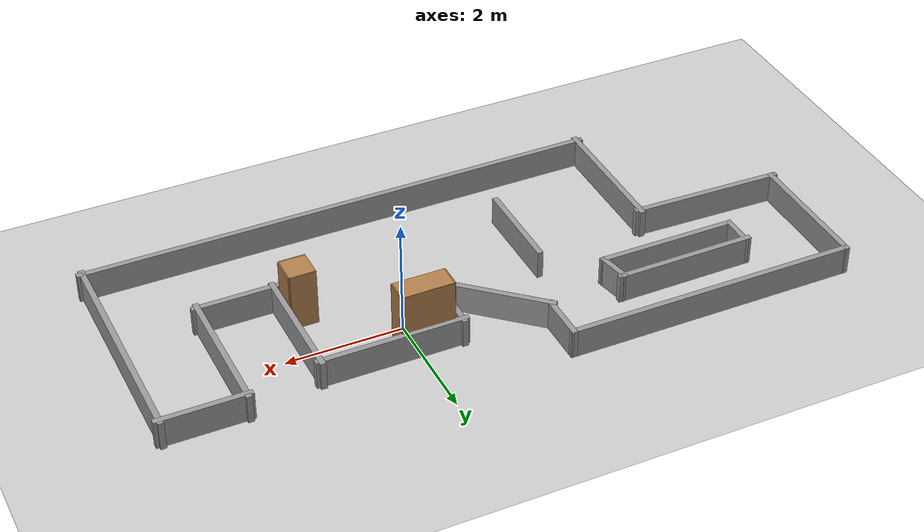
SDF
<sdf version="1.5">
 <world name="default">
  <light name="sun" type="directional">
   <pose>0 0 10 0 -0 0</pose>
   <diffuse>0.8 0.8 0.8 1</diffuse>
   <specular>0.2 0.2 0.2 1</specular>
   <attenuation>
    <range>1000</range>
    <constant>0.9</constant>
    <linear>0.01</linear>
    <quadratic>0.001</quadratic>
   </attenuation>
   <direction>-0.5 0.1 -0.9</direction>
  </light>
  <model name="ground_plane">
   <static>1</static>
   <link name="link">
    <collision name="collision">
     <geometry><plane><normal>0 0 1</normal><size>100 100</size></plane></geometry>
     <surface><friction><ode><mu>100</mu><mu2>50</mu2></ode></friction></surface>
    </collision>
    <visual name="visual">
     <cast_shadows>0</cast_shadows>
     <geometry><plane><normal>0 0 1</normal><size>100 100</size></plane></geometry>
     <material>
      <script><uri>file://media/materials/scripts/gazebo.material</uri><name>Gazebo/Grey</name></script>
     </material>
    </visual>
    <velocity_decay><linear>0</linear><angular>0</angular></velocity_decay>
   </link>
  </model>
  <physics type="ode">
   <max_step_size>0.001</max_step_size>
   <real_time_factor>1</real_time_factor>
   <real_time_update_rate>1000</real_time_update_rate>
   <gravity>0 0 -9.8</gravity>
  </physics>
  <scene><ambient>0.4 0.4 0.4 1</ambient><background>0.7 0.7 0.7 1</background><shadows>1</shadows></scene>
  <spherical_coordinates>
   <surface_model>EARTH_WGS84</surface_model>
   <latitude_deg>0</latitude_deg>
   <longitude_deg>0</longitude_deg>
   <elevation>0</elevation>
   <heading_deg>0</heading_deg>
  </spherical_coordinates>
  <model name="sensing_environment">
   <link name="Wall_0">
    <collision name="Wall_0_Collision">
     <geometry><box><size>2.47599 0.1 0.5</size></box></geometry>
     <pose>0 0 0.25 0 -0 0</pose>
    </collision>
    <visual name="Wall_0_Visual">
     <pose>0 0 0.25 0 -0 0</pose>
     <geometry><box><size>2.47599 0.1 0.5</size></box></geometry>
     <material>
      <script><uri>file://media/materials/scripts/gazebo.material</uri><name>Gazebo/Grey</name></script>
     </material>
    </visual>
    <velocity_decay><linear>0</linear><angular>0</angular></velocity_decay>
    <pose>-5.61297 -2.75592 0 0 0 -1.5708</pose>
   </link>
   <link name="Wall_1">
    <collision name="Wall_1_Collision">
     <geometry><box><size>9.13006 0.1 0.5</size></box></geometry>
     <pose>0 0 0.25 0 -0 0</pose>
    </collision>
    <visual name="Wall_1_Visual">
     <pose>0 0 0.25 0 -0 0</pose>
     <geometry><box><size>9.13006 0.1 0.5</size></box></geometry>
     <material>
      <script><uri>file://media/materials/scripts/gazebo.material</uri><name>Gazebo/Grey</name></script>
     </material>
    </visual>
    <velocity_decay><linear>0</linear><angular>0</angular></velocity_decay>
    <pose>-1.14794 -3.89391 0 0 -0 0</pose>
   </link>
   <link name="Wall_10">
    <collision name="Wall_10_Collision">
     <geometry><box><size>0.886478 0.1 0.5</size></box></geometry>
     <pose>0 0 0.25 0 -0 0</pose>
    </collision>
    <visual name="Wall_10_Visual">
     <pose>0 0 0.25 0 -0 0</pose>
     <geometry><box><size>0.886478 0.1 0.5</size></box></geometry>
     <material>
      <script><uri>file://media/materials/scripts/gazebo.material</uri><name>Gazebo/Grey</name></script>
     </material>
    </visual>
    <velocity_decay><linear>0</linear><angular>0</angular></velocity_decay>
    <pose>-3.12416 0.335761 0 0 -0 1.5704</pose>
   </link>
   <link name="Wall_11">
    <collision name="Wall_11_Collision">
     <geometry><box><size>5.097 0.1 0.5</size></box></geometry>
     <pose>0 0 0.25 0 -0 0</pose>
    </collision>
    <visual name="Wall_11_Visual">
     <pose>0 0 0.25 0 -0 0</pose>
     <geometry><box><size>5.097 0.1 0.5</size></box></geometry>
     <material>
      <script><uri>file://media/materials/scripts/gazebo.material</uri><name>Gazebo/Grey</name></script>
     </material>
    </visual>
    <velocity_decay><linear>0</linear><angular>0</angular></velocity_decay>
    <pose>-5.6225 0.729 0 0 -0 3.14159</pose>
   </link>
   <link name="Wall_12">
    <collision name="Wall_12_Collision">
     <geometry><box><size>2.36684 0.1 0.5</size></box></geometry>
     <pose>0 0 0.25 0 -0 0</pose>
    </collision>
    <visual name="Wall_12_Visual">
     <pose>0 0 0.25 0 -0 0</pose>
     <geometry><box><size>2.36684 0.1 0.5</size></box></geometry>
     <material>
      <script><uri>file://media/materials/scripts/gazebo.material</uri><name>Gazebo/Grey</name></script>
     </material>
    </visual>
    <velocity_decay><linear>0</linear><angular>0</angular></velocity_decay>
    <pose>-8.12076 -0.404419 0 0 0 -1.57058</pose>
   </link>
   <link name="Wall_13">
    <collision name="Wall_13_Collision">
     <geometry><box><size>2.70883 0.1 0.5</size></box></geometry>
     <pose>0 0 0.25 0 -0 0</pose>
    </collision>
    <visual name="Wall_13_Visual">
     <pose>0 0 0.25 0 -0 0</pose>
     <geometry><box><size>2.70883 0.1 0.5</size></box></geometry>
     <material>
      <script><uri>file://media/materials/scripts/gazebo.material</uri><name>Gazebo/Grey</name></script>
     </material>
    </visual>
    <velocity_decay><linear>0</linear><angular>0</angular></velocity_decay>
    <pose>-6.86674 -1.57788 0 0 0 -0.031926</pose>
   </link>
   <link name="Wall_15">
    <collision name="Wall_15_Collision">
     <geometry><box><size>0.589506 0.1 0.5</size></box></geometry>
     <pose>0 0 0.25 0 -0 0</pose>
    </collision>
    <visual name="Wall_15_Visual">
     <pose>0 0 0.25 0 -0 0</pose>
     <geometry><box><size>0.589506 0.1 0.5</size></box></geometry>
     <material>
      <script><uri>file://media/materials/scripts/gazebo.material</uri><name>Gazebo/Grey</name></script>
     </material>
    </visual>
    <velocity_decay><linear>0</linear><angular>0</angular></velocity_decay>
    <pose>-6.76516 -0.431247 0 0 0 -1.57015</pose>
   </link>
   <link name="Wall_16">
    <collision name="Wall_16_Collision">
     <geometry><box><size>2.456 0.1 0.5</size></box></geometry>
     <pose>0 0 0.25 0 -0 0</pose>
    </collision>
    <visual name="Wall_16_Visual">
     <pose>0 0 0.25 0 -0 0</pose>
     <geometry><box><size>2.456 0.1 0.5</size></box></geometry>
     <material>
      <script><uri>file://media/materials/scripts/gazebo.material</uri><name>Gazebo/Grey</name></script>
     </material>
    </visual>
    <velocity_decay><linear>0</linear><angular>0</angular></velocity_decay>
    <pose>-5.587 -0.676 0 0 -0 0</pose>
   </link>
   <link name="Wall_17">
    <collision name="Wall_17_Collision">
     <geometry><box><size>0.616783 0.1 0.5</size></box></geometry>
     <pose>0 0 0.25 0 -0 0</pose>
    </collision>
    <visual name="Wall_17_Visual">
     <pose>0 0 0.25 0 -0 0</pose>
     <geometry><box><size>0.616783 0.1 0.5</size></box></geometry>
     <material>
      <script><uri>file://media/materials/scripts/gazebo.material</uri><name>Gazebo/Grey</name></script>
     </material>
    </visual>
    <velocity_decay><linear>0</linear><angular>0</angular></velocity_decay>
    <pose>-4.45905 -0.422502 0 0 -0 1.76572</pose>
   </link>
   <link name="Wall_18">
    <collision name="Wall_18_Collision">
     <geometry><box><size>2.45629 0.1 0.5</size></box></geometry>
     <pose>0 0 0.25 0 -0 0</pose>
    </collision>
    <visual name="Wall_18_Visual">
     <pose>0 0 0.25 0 -0 0</pose>
     <geometry><box><size>2.45629 0.1 0.5</size></box></geometry>
     <material>
      <script><uri>file://media/materials/scripts/gazebo.material</uri><name>Gazebo/Grey</name></script>
     </material>
    </visual>
    <velocity_decay><linear>0</linear><angular>0</angular></velocity_decay>
    <pose>-5.63721 -0.177749 0 0 0 -3.13384</pose>
   </link>
   <link name="Wall_2">
    <collision name="Wall_2_Collision">
     <geometry><box><size>4.03643 0.1 0.5</size></box></geometry>
     <pose>0 0 0.25 0 -0 0</pose>
    </collision>
    <visual name="Wall_2_Visual">
     <pose>0 0 0.25 0 -0 0</pose>
     <geometry><box><size>4.03643 0.1 0.5</size></box></geometry>
     <material>
      <script><uri>file://media/materials/scripts/gazebo.material</uri><name>Gazebo/Grey</name></script>
     </material>
    </visual>
    <velocity_decay><linear>0</linear><angular>0</angular></velocity_decay>
    <pose>3.31709 -1.9757 0 0 -0 1.5708</pose>
   </link>
   <link name="Wall_20">
    <collision name="Wall_20_Collision">
     <geometry><box><size>1.68868 0.1 0.5</size></box></geometry>
     <pose>0 0 0.25 0 -0 0</pose>
    </collision>
    <visual name="Wall_20_Visual">
     <pose>0 0 0.25 0 -0 0</pose>
     <geometry><box><size>1.68868 0.1 0.5</size></box></geometry>
     <material>
      <script><uri>file://media/materials/scripts/gazebo.material</uri><name>Gazebo/Grey</name></script>
     </material>
    </visual>
    <velocity_decay><linear>0</linear><angular>0</angular></velocity_decay>
    <pose>-3.561 -2.1035 0 0 0 -1.5708</pose>
   </link>
   <link name="Wall_3">
    <collision name="Wall_3_Collision">
     <geometry><box><size>1.5758 0.1 0.5</size></box></geometry>
     <pose>0 0 0.25 0 -0 0</pose>
    </collision>
    <visual name="Wall_3_Visual">
     <pose>0 0 0.25 0 -0 0</pose>
     <geometry><box><size>1.5758 0.1 0.5</size></box></geometry>
     <material>
      <script><uri>file://media/materials/scripts/gazebo.material</uri><name>Gazebo/Grey</name></script>
     </material>
    </visual>
    <velocity_decay><linear>0</linear><angular>0</angular></velocity_decay>
    <pose>2.62919 -0.057478 0 0 -0 3.14159</pose>
   </link>
   <link name="Wall_4">
    <collision name="Wall_4_Collision">
     <geometry><box><size>2.44367 0.1 0.5</size></box></geometry>
     <pose>0 0 0.25 0 -0 0</pose>
    </collision>
    <visual name="Wall_4_Visual">
     <pose>0 0 0.25 0 -0 0</pose>
     <geometry><box><size>2.44367 0.1 0.5</size></box></geometry>
     <material>
      <script><uri>file://media/materials/scripts/gazebo.material</uri><name>Gazebo/Grey</name></script>
     </material>
    </visual>
    <velocity_decay><linear>0</linear><angular>0</angular></velocity_decay>
    <pose>1.94129 -1.17931 0 0 0 -1.5708</pose>
   </link>
   <link name="Wall_5">
    <collision name="Wall_5_Collision">
     <geometry><box><size>1.47218 0.1 0.5</size></box></geometry>
     <pose>0 0 0.25 0 -0 0</pose>
    </collision>
    <visual name="Wall_5_Visual">
     <pose>0 0 0.25 0 -0 0</pose>
     <geometry><box><size>1.47218 0.1 0.5</size></box></geometry>
     <material>
      <script><uri>file://media/materials/scripts/gazebo.material</uri><name>Gazebo/Grey</name></script>
     </material>
    </visual>
    <velocity_decay><linear>0</linear><angular>0</angular></velocity_decay>
    <pose>1.3052 -2.30115 0 0 -0 3.14159</pose>
   </link>
   <link name="Wall_6">
    <collision name="Wall_6_Collision">
     <geometry><box><size>2.21236 0.1 0.5</size></box></geometry>
     <pose>0 0 0.25 0 -0 0</pose>
    </collision>
    <visual name="Wall_6_Visual">
     <pose>0 0 0.25 0 -0 0</pose>
     <geometry><box><size>2.21236 0.1 0.5</size></box></geometry>
     <material>
      <script><uri>file://media/materials/scripts/gazebo.material</uri><name>Gazebo/Grey</name></script>
     </material>
    </visual>
    <velocity_decay><linear>0</linear><angular>0</angular></velocity_decay>
    <pose>0.66911 -1.29497 0 0 -0 1.5708</pose>
   </link>
   <link name="Wall_7">
    <collision name="Wall_7_Collision">
     <geometry><box><size>2.58245 0.1 0.5</size></box></geometry>
     <pose>0 0 0.25 0 -0 0</pose>
    </collision>
    <visual name="Wall_7_Visual">
     <pose>0 0 0.25 0 -0 0</pose>
     <geometry><box><size>2.58245 0.1 0.5</size></box></geometry>
     <material>
      <script><uri>file://media/materials/scripts/gazebo.material</uri><name>Gazebo/Grey</name></script>
     </material>
    </visual>
    <velocity_decay><linear>0</linear><angular>0</angular></velocity_decay>
    <pose>-0.522116 -0.288784 0 0 -0 3.14159</pose>
   </link>
   <link name="Wall_8">
    <collision name="Wall_8_Collision">
     <geometry><box><size>1.24088 0.1 0.5</size></box></geometry>
     <pose>0 0 0.25 0 -0 0</pose>
    </collision>
    <visual name="Wall_8_Visual">
     <pose>0 0 0.25 0 -0 0</pose>
     <geometry><box><size>1.24088 0.1 0.5</size></box></geometry>
     <material>
      <script><uri>file://media/materials/scripts/gazebo.material</uri><name>Gazebo/Grey</name></script>
     </material>
    </visual>
    <velocity_decay><linear>0</linear><angular>0</angular></velocity_decay>
    <pose>-1.71334 -0.809223 0 0 0 -1.5708</pose>
   </link>
   <link name="Wall_9">
    <collision name="Wall_9_Collision">
     <geometry><box><size>2.09981 0.1 0.5</size></box></geometry>
     <pose>0 0 0.25 0 -0 0</pose>
    </collision>
    <visual name="Wall_9_Visual">
     <pose>0 0 0.25 0 -0 0</pose>
     <geometry><box><size>2.09981 0.1 0.5</size></box></geometry>
     <material>
      <script><uri>file://media/materials/scripts/gazebo.material</uri><name>Gazebo/Grey</name></script>
     </material>
    </visual>
    <velocity_decay><linear>0</linear><angular>0</angular></velocity_decay>
    <pose>-2.41883 -0.69357 0 0 -0 2.40787</pose>
   </link>
   <static>1</static>
   <pose>1 1 0 0 -0 0</pose>
  </model>
  <model name="bookshelf">
   <static>1</static>
   <link name="link">
    <inertial><mass>1</mass></inertial>
    <collision name="back">
     <pose>0 0.005 0.6 0 -0 0</pose>
     <geometry><box><size>0.9 0.01 1.2</size></box></geometry>
    </collision>
    <visual name="visual1">
     <pose>0 0.005 0.6 0 -0 0</pose>
     <geometry><box><size>0.9 0.01 1.2</size></box></geometry>
     <material>
      <script><uri>file://media/materials/scripts/gazebo.material</uri><name>Gazebo/Wood</name></script>
     </material>
    </visual>
    <collision name="left_side">
     <pose>0.45 -0.195 0.6 0 -0 0</pose>
     <geometry><box><size>0.02 0.4 1.2</size></box></geometry>
    </collision>
    <visual name="visual2">
     <pose>0.45 -0.195 0.6 0 -0 0</pose>
     <geometry><box><size>0.02 0.4 1.2</size></box></geometry>
     <material>
      <script><uri>file://media/materials/scripts/gazebo.material</uri><name>Gazebo/Wood</name></script>
     </material>
    </visual>
    <collision name="right_side">
     <pose>-0.45 -0.195 0.6 0 -0 0</pose>
     <geometry><box><size>0.02 0.4 1.2</size></box></geometry>
    </collision>
    <visual name="visual3">
     <pose>-0.45 -0.195 0.6 0 -0 0</pose>
     <geometry><box><size>0.02 0.4 1.2</size></box></geometry>
     <material>
      <script><uri>file://media/materials/scripts/gazebo.material</uri><name>Gazebo/Wood</name></script>
     </material>
    </visual>
    <collision name="bottom">
     <pose>0 -0.195 0.03 0 -0 0</pose>
     <geometry><box><size>0.88 0.4 0.06</size></box></geometry>
    </collision>
    <visual name="visual4">
     <pose>0 -0.195 0.03 0 -0 0</pose>
     <geometry><box><size>0.88 0.4 0.06</size></box></geometry>
     <material>
      <script><uri>file://media/materials/scripts/gazebo.material</uri><name>Gazebo/Wood</name></script>
     </material>
    </visual>
    <collision name="top">
     <pose>0 -0.195 1.19 0 -0 0</pose>
     <geometry><box><size>0.88 0.4 0.02</size></box></geometry>
    </collision>
    <visual name="visual5">
     <pose>0 -0.195 1.19 0 -0 0</pose>
     <geometry><box><size>0.88 0.4 0.02</size></box></geometry>
     <material>
      <script><uri>file://media/materials/scripts/gazebo.material</uri><name>Gazebo/Wood</name></script>
     </material>
    </visual>
    <collision name="low_shelf">
     <pose>0 -0.195 0.43 0 -0 0</pose>
     <geometry><box><size>0.88 0.4 0.02</size></box></geometry>
    </collision>
    <visual name="visual6">
     <pose>0 -0.195 0.43 0 -0 0</pose>
     <geometry><box><size>0.88 0.4 0.02</size></box></geometry>
     <material>
      <script><uri>file://media/materials/scripts/gazebo.material</uri><name>Gazebo/Wood</name></script>
     </material>
    </visual>
    <collision name="high_shelf">
     <pose>0 -0.195 0.8 0 -0 0</pose>
     <geometry><box><size>0.88 0.4 0.02</size></box></geometry>
    </collision>
    <visual name="visual7">
     <pose>0 -0.195 0.8 0 -0 0</pose>
     <geometry><box><size>0.88 0.4 0.02</size></box></geometry>
     <material>
      <script><uri>file://media/materials/scripts/gazebo.material</uri><name>Gazebo/Wood</name></script>
     </material>
    </visual>
    <velocity_decay><linear>0</linear><angular>0</angular></velocity_decay>
   </link>
   <pose>-0.15386 0.668077 0 0 -0 0</pose>
  </model>
  <model name="cabinet_0">
   <static>1</static>
   <link name="cabinet_bottom_plate">
    <inertial>
     <pose>0 0 -1 0 -0 0</pose>
     <inertia><ixx>2.05</ixx><ixy>0</ixy><ixz>0</ixz><iyy>2.05</iyy><iyz>0</iyz><izz>2.05</izz></inertia>
     <mass>25</mass>
    </inertial>
    <collision name="cabinet_bottom_plate_geom">
     <pose>0 0 0.01 0 -0 0</pose>
     <geometry><box><size>0.45 0.45 0.02</size></box></geometry>
    </collision>
    <visual name="cabinet_bottom_plate_geom_visual">
     <pose>0 0 0.01 0 -0 0</pose>
     <geometry><box><size>0.45 0.45 0.02</size></box></geometry>
     <material>
      <script><uri>file://media/materials/scripts/gazebo.material</uri><name>Gazebo/Wood</name></script>
     </material>
    </visual>
    <collision name="cabinet_bottom_plate_geom_cabinet_back_plate">
     <pose>0.235 0 0.51 0 -0 0</pose>
     <geometry><box><size>0.02 0.45 1.02</size></box></geometry>
    </collision>
    <visual name="cabinet_bottom_plate_geom_cabinet_back_plate_visual">
     <pose>0.235 0 0.51 0 -0 0</pose>
     <geometry><box><size>0.02 0.45 1.02</size></box></geometry>
     <material>
      <script><uri>file://media/materials/scripts/gazebo.material</uri><name>Gazebo/Wood</name></script>
     </material>
    </visual>
    <collision name="cabinet_bottom_plate_geom_cabinet_left_plate">
     <pose>0 0.235 0.51 0 -0 0</pose>
     <geometry><box><size>0.45 0.02 1.02</size></box></geometry>
    </collision>
    <visual name="cabinet_bottom_plate_geom_cabinet_left_plate_visual">
     <pose>0 0.235 0.51 0 -0 0</pose>
     <geometry><box><size>0.45 0.02 1.02</size></box></geometry>
     <material>
      <script><uri>file://media/materials/scripts/gazebo.material</uri><name>Gazebo/Wood</name></script>
     </material>
    </visual>
    <collision name="cabinet_bottom_plate_geom_cabinet_middle_plate">
     <pose>0 0 0.51 0 -0 0</pose>
     <geometry><box><size>0.45 0.45 0.02</size></box></geometry>
    </collision>
    <visual name="cabinet_bottom_plate_geom_cabinet_middle_plate_visual">
     <pose>0 0 0.51 0 -0 0</pose>
     <geometry><box><size>0.45 0.45 0.02</size></box></geometry>
     <material>
      <script><uri>file://media/materials/scripts/gazebo.material</uri><name>Gazebo/Wood</name></script>
     </material>
    </visual>
    <collision name="cabinet_bottom_plate_geom_cabinet_right_plate">
     <pose>0 -0.235 0.51 0 -0 0</pose>
     <geometry><box><size>0.45 0.02 1.02</size></box></geometry>
    </collision>
    <visual name="cabinet_bottom_plate_geom_cabinet_right_plate_visual">
     <pose>0 -0.235 0.51 0 -0 0</pose>
     <geometry><box><size>0.45 0.02 1.02</size></box></geometry>
     <material>
      <script><uri>file://media/materials/scripts/gazebo.material</uri><name>Gazebo/Wood</name></script>
     </material>
    </visual>
    <collision name="cabinet_bottom_plate_geom_cabinet_top_plate">
     <pose>0 0 1.01 0 -0 0</pose>
     <geometry><box><size>0.45 0.45 0.02</size></box></geometry>
    </collision>
    <visual name="cabinet_bottom_plate_geom_cabinet_top_plate_visual">
     <pose>0 0 1.01 0 -0 0</pose>
     <geometry><box><size>0.45 0.45 0.02</size></box></geometry>
     <material>
      <script><uri>file://media/materials/scripts/gazebo.material</uri><name>Gazebo/Wood</name></script>
     </material>
    </visual>
    <velocity_decay><linear>0</linear><angular>0</angular></velocity_decay>
   </link>
   <pose>1.36244 -0.970768 0 0 -0 0</pose>
  </model>
  <plugin filename="plugins/libSuperServer.so" name="ControlCenter"/>
 </world>
</sdf>
